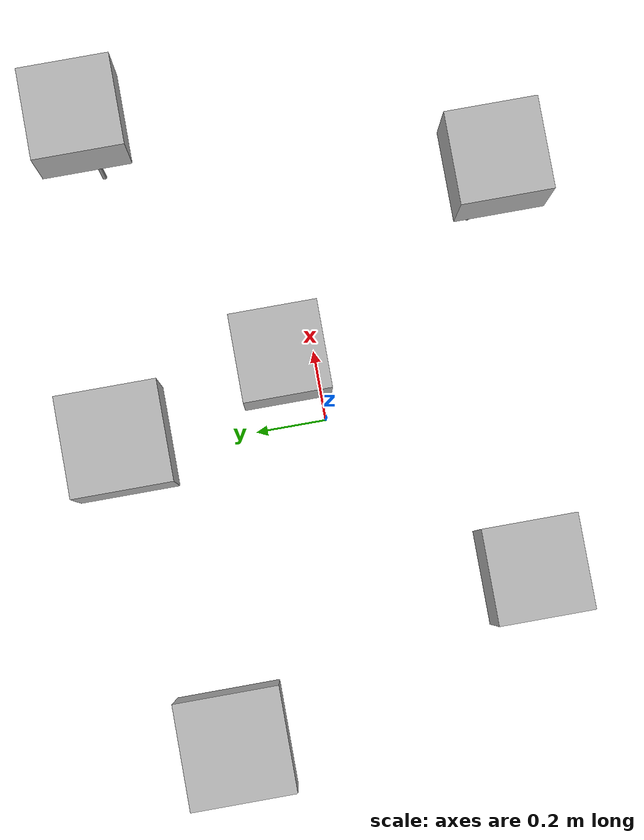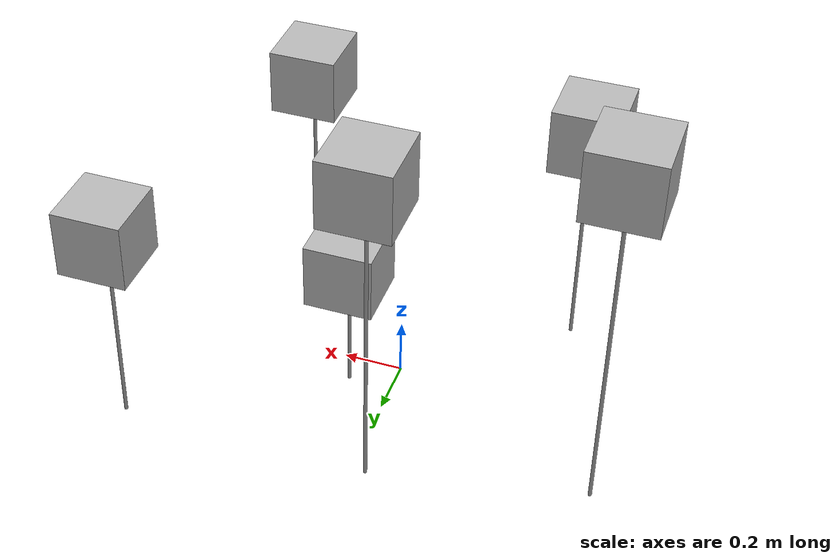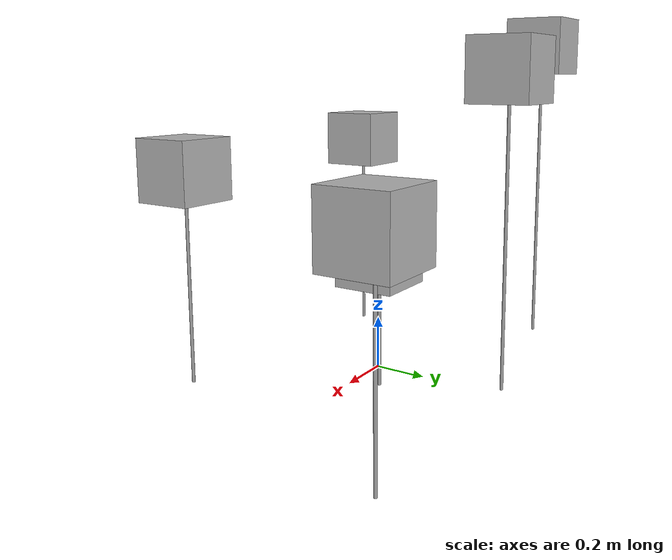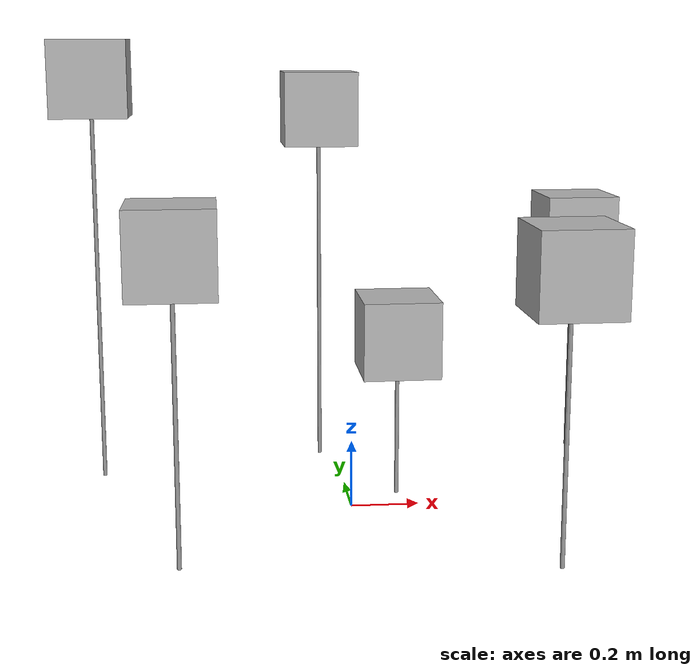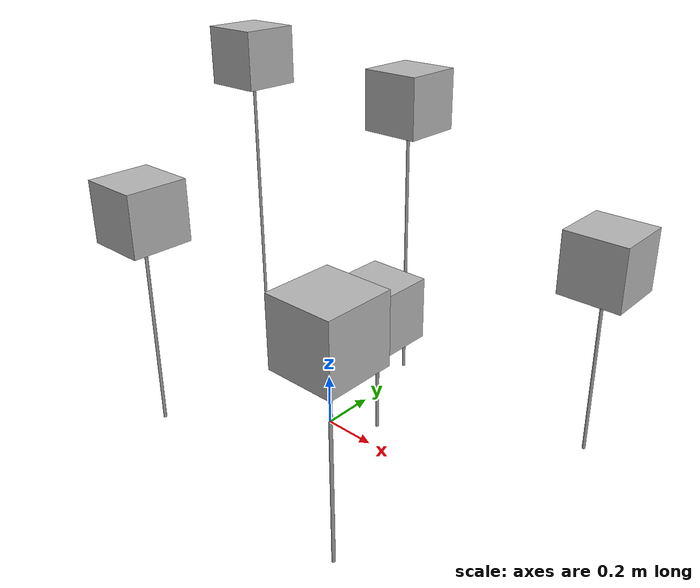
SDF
<?xml version='1.0'?>
<sdf version='1.5'>
<!--
     Written by Kristoffer Rakstad Solberg, Student
     Copyright (c) 2019 Manta AUV, Vortex NTNU.
     All rights reserved.
-->

  <model name='dice'>
    <pose>0 0 0 0 0 0</pose>
    <self_collide> 0 </self_collide>
    <static> 1</static>

    <link name='one_dice'>
      <pose>0.80 0.5 0.75 0 0 0</pose>
      <visual name='one_dice_vis'>
        <geometry>
          <box>
            <size>0.23 0.23 0.23</size>
          </box>
        </geometry>
        <material>
          <script>
            <uri>model://2018/dice/materials/scripts</uri>
            <uri>model://2018/dice/materials/textures</uri>
            <name>OneFace</name>
          </script>
        </material>
      </visual>

      <visual name='one_dice_cable'>
        <pose> 0 0 -0.375 0 0 0</pose>
        <geometry>
          <cylinder>
            <radius> 0.006 </radius>
            <length> 0.75 </length>
          </cylinder>
        </geometry>
        <material>
          <script>
            <uri> file://media/materials/scripts/gazebo.material</uri>
            <name> Gazebo/Grey </name>
          </script>
        </material>
      </visual>

      <collision name='one_dice_collide'>
        <geometry>
          <box>
            <size>0.23 0.23 0.23</size>
          </box>
        </geometry>
      </collision>
    </link>

    <link name='two_dice'>
      <pose>-0.75 0.35 1.25 0 0 0</pose>
      <visual name='two_dice_vis'>
        <geometry>
          <box>
            <size>0.23 0.23 0.23</size>
          </box>
        </geometry>
        <material>
          <script>
            <uri>model://2018/dice/materials/scripts</uri>
            <uri>model://2018/dice/materials/textures</uri>
            <name>TwoFace</name>
          </script>
        </material>
      </visual>

      <visual name='two_dice_cable'>
        <pose> 0 0 -0.625 0 0 0</pose>
        <geometry>
          <cylinder>
            <radius> 0.006 </radius>
            <length> 1.25 </length>
          </cylinder>
        </geometry>
        <material>
          <script>
            <uri> file://media/materials/scripts/gazebo.material</uri>
            <name> Gazebo/Grey </name>
          </script>
        </material>
      </visual>

      <collision name='two_dice_collide'>
        <geometry>
          <box>
            <size>0.23 0.23 0.23</size>
          </box>
        </geometry>
      </collision>
    </link>

    <link name='three_dice'>
      <pose>-0.05 0.50 1.15 0 0 0</pose>
      <visual name='three_dice_vis'>
        <geometry>
          <box>
            <size>0.23 0.23 0.23</size>
          </box>
        </geometry>
        <material>
          <script>
            <uri>model://2018/dice/materials/scripts</uri>
            <uri>model://2018/dice/materials/textures</uri>
            <name>ThreeFace</name>
          </script>
        </material>
      </visual>

      <visual name='three_dice_cable'>
        <pose> 0 0 -0.575 0 0 0</pose>
        <geometry>
          <cylinder>
            <radius> 0.006 </radius>
            <length> 1.15 </length>
          </cylinder>
        </geometry>
        <material>
          <script>
            <uri> file://media/materials/scripts/gazebo.material</uri>
            <name> Gazebo/Grey </name>
          </script>
        </material>
      </visual>

      <collision name='three_dice_collide'>
        <geometry>
          <box>
            <size>0.23 0.23 0.23</size>
          </box>
        </geometry>
      </collision>
    </link>

    <link name='four_dice'>
      <pose>0.5 -0.5 0.8 0 0 0</pose>
      <visual name='four_dice_vis'>
        <geometry>
          <box>
            <size>0.23 0.23 0.23</size>
          </box>
        </geometry>
        <material>
          <script>
            <uri>model://2018/dice/materials/scripts</uri>
            <uri>model://2018/dice/materials/textures</uri>
            <name>FourFace</name>
          </script>
        </material>
      </visual>

      <visual name='four_dice_cable'>
        <pose> 0 0 -0.4 0 0 0</pose>
        <geometry>
          <cylinder>
            <radius> 0.006 </radius>
            <length> 0.8 </length>
          </cylinder>
        </geometry>
        <material>
          <script>
            <uri> file://media/materials/scripts/gazebo.material</uri>
            <name> Gazebo/Grey </name>
          </script>
        </material>
      </visual>

      <collision name='four_dice_collide'>
        <geometry>
          <box>
            <size>0.23 0.23 0.23</size>
          </box>
        </geometry>
      </collision>
    </link>

    <link name='five_dice'>
      <pose>0.15 0.10 0.5 0 0 0</pose>
      <visual name='five_dice_vis'>
        <geometry>
          <box>
            <size>0.23 0.23 0.23</size>
          </box>
        </geometry>
        <material>
          <script>
            <uri>model://2018/dice/materials/scripts</uri>
            <uri>model://2018/dice/materials/textures</uri>
            <name>FiveFace</name>
          </script>
        </material>
      </visual>

      <visual name='five_dice_cable'>
        <pose> 0 0 -0.25 0 0 0</pose>
        <geometry>
          <cylinder>
            <radius> 0.006 </radius>
            <length> 0.5 </length>
          </cylinder>
        </geometry>
        <material>
          <script>
            <uri> file://media/materials/scripts/gazebo.material</uri>
            <name> Gazebo/Grey </name>
          </script>
        </material>
      </visual>

      <collision name='five_dice_collide'>
        <geometry>
          <box>
            <size>0.23 0.23 0.23</size>
          </box>
        </geometry>
      </collision>
    </link>

    <link name='six_dice'>
      <pose>-0.5 -0.4 0.85 0 0 0</pose>
      <visual name='six_dice_vis'>
        <geometry>
          <box>
            <size>0.23 0.23 0.23</size>
          </box>
        </geometry>
        <material>
          <script>
            <uri>model://2018/dice/materials/scripts</uri>
            <uri>model://2018/dice/materials/textures</uri>
            <name>SixFace</name>
          </script>
        </material>
      </visual>

      <visual name='six_dice_cable'>
        <pose> 0 0 -0.425 0 0 0</pose>
        <geometry>
          <cylinder>
            <radius> 0.006 </radius>
            <length> 0.85 </length>
          </cylinder>
        </geometry>
        <material>
          <script>
            <uri> file://media/materials/scripts/gazebo.material</uri>
            <name> Gazebo/Grey </name>
          </script>
        </material>
      </visual>

      <collision name='six_dice_collide'>
        <geometry>
          <box>
            <size>0.23 0.23 0.23</size>
          </box>
        </geometry>
      </collision>
    </link>

  </model>

</sdf>
